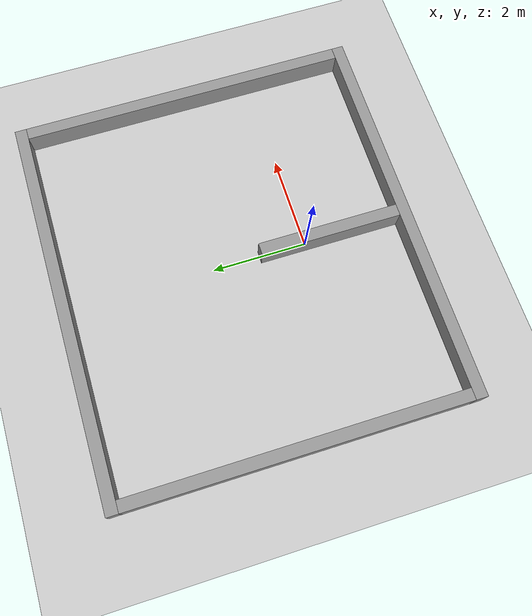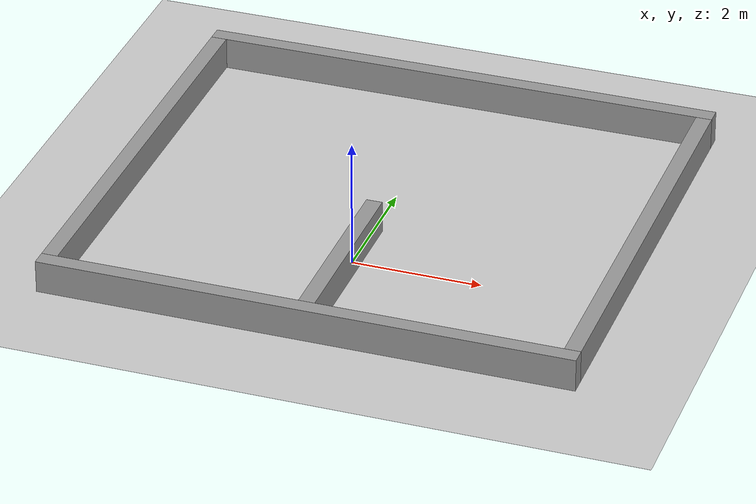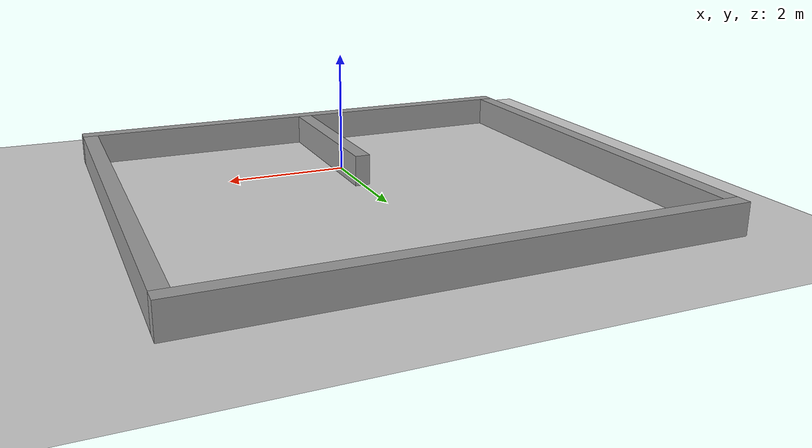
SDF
<sdf version="1.4">
 <world name="default">
  <light name="sun" type="directional">
   <pose>0 0 10 0 -0 0</pose>
   <diffuse>0.8 0.8 0.8 1</diffuse>
   <specular>0.2 0.2 0.2 1</specular>
   <attenuation>
    <range>1000</range>
    <constant>0.9</constant>
    <linear>0.01</linear>
    <quadratic>0.001</quadratic>
   </attenuation>
   <direction>-0.5 0.1 -0.9</direction>
  </light>
  <model name="ground_plane">
   <static>1</static>
   <link name="link">
    <collision name="collision">
     <geometry><plane><normal>0 0 1</normal><size>100 100</size></plane></geometry>
     <surface><friction><ode><mu>100</mu><mu2>50</mu2></ode></friction></surface>
    </collision>
    <visual name="visual">
     <cast_shadows>0</cast_shadows>
     <geometry><plane><normal>0 0 1</normal><size>100 100</size></plane></geometry>
     <material>
      <script><uri>file://media/materials/scripts/gazebo.material</uri><name>Gazebo/Grey</name></script>
     </material>
    </visual>
    <velocity_decay><linear>0</linear><angular>0</angular></velocity_decay>
   </link>
  </model>
  <model name="wall_outside_0">
   <pose>0 5.125 0 0 -0 0</pose>
   <link name="link">
    <inertial>
     <mass>0</mass>
     <inertia><ixx>0</ixx><ixy>0</ixy><ixz>0</ixz><iyy>0</iyy><iyz>0</iyz><izz>0</izz></inertia>
    </inertial>
    <collision name="collision"><geometry><box><size>8.25 0.25 1</size></box></geometry></collision>
    <visual name="visual">
     <geometry><box><size>8.25 0.25 1</size></box></geometry>
     <material>
      <script><uri>file://media/materials/scripts/gazebo.material</uri><name>Gazebo/Grey</name></script>
     </material>
    </visual>
    <velocity_decay><linear>0</linear><angular>0</angular></velocity_decay>
   </link>
   <static>1</static>
  </model>
  <model name="wall_outside_1">
   <pose>0 -2.125 0 0 -0 0</pose>
   <link name="link">
    <inertial>
     <mass>0</mass>
     <inertia><ixx>0</ixx><ixy>0</ixy><ixz>0</ixz><iyy>0</iyy><iyz>0</iyz><izz>0</izz></inertia>
    </inertial>
    <collision name="collision"><geometry><box><size>8.25 0.25 1</size></box></geometry></collision>
    <visual name="visual">
     <geometry><box><size>8.25 0.25 1</size></box></geometry>
     <material>
      <script><uri>file://media/materials/scripts/gazebo.material</uri><name>Gazebo/Grey</name></script>
     </material>
    </visual>
    <velocity_decay><linear>0</linear><angular>0</angular></velocity_decay>
   </link>
   <static>1</static>
  </model>
  <model name="wall_outside_2">
   <pose>-4 1.5 0 0 -0 0</pose>
   <link name="link">
    <inertial>
     <mass>0</mass>
     <inertia><ixx>0</ixx><ixy>0</ixy><ixz>0</ixz><iyy>0</iyy><iyz>0</iyz><izz>0</izz></inertia>
    </inertial>
    <collision name="collision"><geometry><box><size>0.25 7 1</size></box></geometry></collision>
    <visual name="visual">
     <geometry><box><size>0.25 7 1</size></box></geometry>
     <material>
      <script><uri>file://media/materials/scripts/gazebo.material</uri><name>Gazebo/Grey</name></script>
     </material>
    </visual>
    <velocity_decay><linear>0</linear><angular>0</angular></velocity_decay>
   </link>
   <static>1</static>
  </model>
  <model name="wall_outside_3">
   <pose>4 1.5 0 0 -0 0</pose>
   <link name="link">
    <inertial>
     <mass>0</mass>
     <inertia><ixx>0</ixx><ixy>0</ixy><ixz>0</ixz><iyy>0</iyy><iyz>0</iyz><izz>0</izz></inertia>
    </inertial>
    <collision name="collision"><geometry><box><size>0.25 7 1</size></box></geometry></collision>
    <visual name="visual">
     <geometry><box><size>0.25 7 1</size></box></geometry>
     <material>
      <script><uri>file://media/materials/scripts/gazebo.material</uri><name>Gazebo/Grey</name></script>
     </material>
    </visual>
    <velocity_decay><linear>0</linear><angular>0</angular></velocity_decay>
   </link>
   <static>1</static>
  </model>
  <model name="wall_inside_0">
   <pose>0 -0.5 0 0 -0 0</pose>
   <link name="link">
    <inertial>
     <mass>0</mass>
     <inertia><ixx>0</ixx><ixy>0</ixy><ixz>0</ixz><iyy>0</iyy><iyz>0</iyz><izz>0</izz></inertia>
    </inertial>
    <collision name="collision"><geometry><box><size>0.25 3 1</size></box></geometry></collision>
    <visual name="visual">
     <geometry><box><size>0.25 3 1</size></box></geometry>
     <material>
      <script><uri>file://media/materials/scripts/gazebo.material</uri><name>Gazebo/Grey</name></script>
     </material>
    </visual>
    <velocity_decay><linear>0</linear><angular>0</angular></velocity_decay>
   </link>
   <static>1</static>
  </model>
  <light name="light_c" type="spot">
   <pose>-3 4 1.5 0 -0 0</pose>
   <diffuse>0.8 0.8 10.8 1</diffuse>
   <specular>0.2 0.2 0.2 1</specular>
   <attenuation>
    <range>10</range>
    <constant>0.9</constant>
    <linear>0.01</linear>
    <quadratic>0.001</quadratic>
   </attenuation>
   <direction>-0 0 -1.0</direction>
  </light>
  <light name="light_b" type="spot">
   <pose>-3.2 -1 1.5 0 -0 0</pose>
   <diffuse>0.8 10.8 0.8 1</diffuse>
   <specular>0.2 0.2 0.2 1</specular>
   <attenuation>
    <range>10</range>
    <constant>0.9</constant>
    <linear>0.01</linear>
    <quadratic>0.001</quadratic>
   </attenuation>
   <direction>-0 0 -1.0</direction>
  </light>
  <light name="light_a" type="spot">
   <pose>3.2 -1 1.5 0 -0 0</pose>
   <diffuse>10.8 0.8 0.8 1</diffuse>
   <specular>0.2 0.2 0.2 1</specular>
   <attenuation>
    <range>10</range>
    <constant>0.9</constant>
    <linear>0.01</linear>
    <quadratic>0.001</quadratic>
   </attenuation>
   <direction>-0 0 -1.0</direction>
  </light>
  <physics type="ode">
   <max_step_size>0.0025</max_step_size>
   <real_time_factor>1</real_time_factor>
   <real_time_update_rate>1000</real_time_update_rate>
   <gravity>0 0 -9.8</gravity>
  </physics>
  <scene><ambient>0.4 0.4 0.4 1</ambient><background>0.7 0.7 0.7 1</background><shadows>1</shadows></scene>
 </world>
</sdf>
